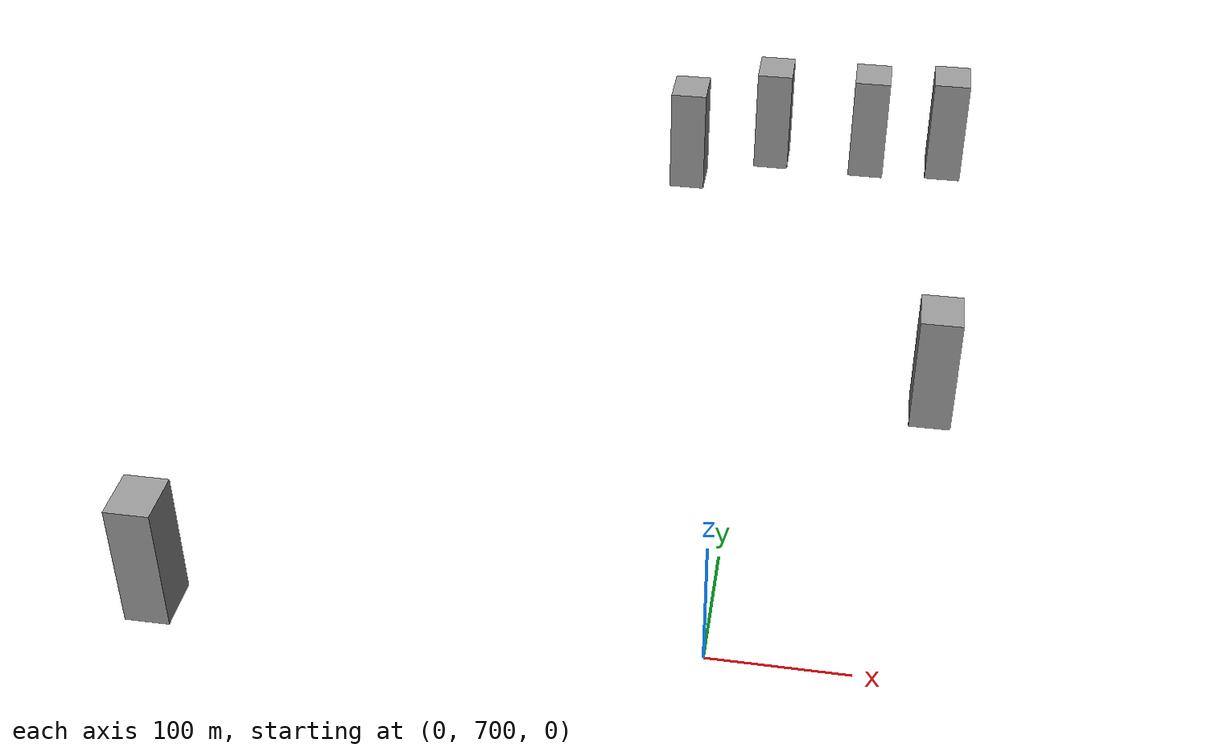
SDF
<sdf version="1.7">
 <world name="default">
  <model name="huge_building_59">
   <link name="link">
    <inertial>
     <mass>137299</mass>
     <inertia>
      <ixx>1.37911e+08</ixx>
      <ixy>0</ixy>
      <ixz>0</ixz>
      <iyy>1.32035e+08</iyy>
      <iyz>0</iyz>
      <izz>3.13216e+07</izz>
     </inertia>
    </inertial>
    <visual name="visual">
     <geometry><box><size>33.3468 40.3177 102.117</size></box></geometry>
     <material>
      <script><name>Gazebo/Grey</name><uri>file://media/materials/scripts/gazebo.material</uri></script>
      <shader type="pixel"/>
     </material>
    </visual>
    <collision name="collision">
     <geometry><box><size>33.3468 40.3177 102.117</size></box></geometry>
     <surface>
      <friction>
       <ode><mu>1</mu><mu2>1</mu2><fdir1>0 0 0</fdir1><slip1>0</slip1><slip2>0</slip2></ode>
       <torsional>
        <coefficient>1</coefficient>
        <patch_radius>0</patch_radius>
        <surface_radius>0</surface_radius>
        <use_patch_radius>1</use_patch_radius>
        <ode><slip>0</slip></ode>
       </torsional>
      </friction>
      <bounce><restitution_coefficient>0</restitution_coefficient><threshold>1e+06</threshold></bounce>
      <contact>
       <collide_without_contact>0</collide_without_contact>
       <collide_without_contact_bitmask>1</collide_without_contact_bitmask>
       <collide_bitmask>1</collide_bitmask>
       <ode>
        <soft_cfm>0</soft_cfm>
        <soft_erp>0.2</soft_erp>
        <kp>1e+13</kp>
        <kd>1</kd>
        <max_vel>0.01</max_vel>
        <min_depth>0</min_depth>
       </ode>
       <bullet>
        <split_impulse>1</split_impulse>
        <split_impulse_penetration_threshold>-0.01</split_impulse_penetration_threshold>
        <soft_cfm>0</soft_cfm>
        <soft_erp>0.2</soft_erp>
        <kp>1e+13</kp>
        <kd>1</kd>
       </bullet>
      </contact>
     </surface>
    </collision>
   </link>
   <static>0</static>
   <pose>-400.38 721.44 21 0 -0 0</pose>
  </model>
  <model name="huge_building_102">
   <link name="link">
    <inertial>
     <mass>137299</mass>
     <inertia>
      <ixx>1.37911e+08</ixx>
      <ixy>0</ixy>
      <ixz>0</ixz>
      <iyy>1.32035e+08</iyy>
      <iyz>0</iyz>
      <izz>3.13216e+07</izz>
     </inertia>
    </inertial>
    <visual name="visual">
     <geometry><box><size>33.3468 40.3177 102.117</size></box></geometry>
     <material>
      <script><name>Gazebo/Grey</name><uri>file://media/materials/scripts/gazebo.material</uri></script>
      <shader type="pixel"/>
     </material>
    </visual>
    <collision name="collision">
     <geometry><box><size>33.3468 40.3177 102.117</size></box></geometry>
     <surface>
      <friction>
       <ode><mu>1</mu><mu2>1</mu2><fdir1>0 0 0</fdir1><slip1>0</slip1><slip2>0</slip2></ode>
       <torsional>
        <coefficient>1</coefficient>
        <patch_radius>0</patch_radius>
        <surface_radius>0</surface_radius>
        <use_patch_radius>1</use_patch_radius>
        <ode><slip>0</slip></ode>
       </torsional>
      </friction>
      <bounce><restitution_coefficient>0</restitution_coefficient><threshold>1e+06</threshold></bounce>
      <contact>
       <collide_without_contact>0</collide_without_contact>
       <collide_without_contact_bitmask>1</collide_without_contact_bitmask>
       <collide_bitmask>1</collide_bitmask>
       <ode>
        <soft_cfm>0</soft_cfm>
        <soft_erp>0.2</soft_erp>
        <kp>1e+13</kp>
        <kd>1</kd>
        <max_vel>0.01</max_vel>
        <min_depth>0</min_depth>
       </ode>
       <bullet>
        <split_impulse>1</split_impulse>
        <split_impulse_penetration_threshold>-0.01</split_impulse_penetration_threshold>
        <soft_cfm>0</soft_cfm>
        <soft_erp>0.2</soft_erp>
        <kp>1e+13</kp>
        <kd>1</kd>
       </bullet>
      </contact>
     </surface>
    </collision>
   </link>
   <static>0</static>
   <pose>-92.7416 1385.46 15 0 -0 0</pose>
  </model>
  <model name="huge_building_103">
   <link name="link">
    <inertial>
     <mass>137299</mass>
     <inertia>
      <ixx>1.37911e+08</ixx>
      <ixy>0</ixy>
      <ixz>0</ixz>
      <iyy>1.32035e+08</iyy>
      <iyz>0</iyz>
      <izz>3.13216e+07</izz>
     </inertia>
    </inertial>
    <visual name="visual">
     <geometry><box><size>33.3468 40.3177 102.117</size></box></geometry>
     <material>
      <script><name>Gazebo/Grey</name><uri>file://media/materials/scripts/gazebo.material</uri></script>
      <shader type="pixel"/>
     </material>
    </visual>
    <collision name="collision">
     <geometry><box><size>33.3468 40.3177 102.117</size></box></geometry>
     <surface>
      <friction>
       <ode><mu>1</mu><mu2>1</mu2><fdir1>0 0 0</fdir1><slip1>0</slip1><slip2>0</slip2></ode>
       <torsional>
        <coefficient>1</coefficient>
        <patch_radius>0</patch_radius>
        <surface_radius>0</surface_radius>
        <use_patch_radius>1</use_patch_radius>
        <ode><slip>0</slip></ode>
       </torsional>
      </friction>
      <bounce><restitution_coefficient>0</restitution_coefficient><threshold>1e+06</threshold></bounce>
      <contact>
       <collide_without_contact>0</collide_without_contact>
       <collide_without_contact_bitmask>1</collide_without_contact_bitmask>
       <collide_bitmask>1</collide_bitmask>
       <ode>
        <soft_cfm>0</soft_cfm>
        <soft_erp>0.2</soft_erp>
        <kp>1e+13</kp>
        <kd>1</kd>
        <max_vel>0.01</max_vel>
        <min_depth>0</min_depth>
       </ode>
       <bullet>
        <split_impulse>1</split_impulse>
        <split_impulse_penetration_threshold>-0.01</split_impulse_penetration_threshold>
        <soft_cfm>0</soft_cfm>
        <soft_erp>0.2</soft_erp>
        <kp>1e+13</kp>
        <kd>1</kd>
       </bullet>
      </contact>
     </surface>
    </collision>
   </link>
   <static>0</static>
   <pose>-13.0269 1424.68 22 0 -0 0</pose>
  </model>
  <model name="huge_building_104">
   <link name="link">
    <inertial>
     <mass>137299</mass>
     <inertia>
      <ixx>1.37911e+08</ixx>
      <ixy>0</ixy>
      <ixz>0</ixz>
      <iyy>1.32035e+08</iyy>
      <iyz>0</iyz>
      <izz>3.13216e+07</izz>
     </inertia>
    </inertial>
    <visual name="visual">
     <geometry><box><size>33.3468 40.3177 102.117</size></box></geometry>
     <material>
      <script><name>Gazebo/Grey</name><uri>file://media/materials/scripts/gazebo.material</uri></script>
      <shader type="pixel"/>
     </material>
    </visual>
    <collision name="collision">
     <geometry><box><size>33.3468 40.3177 102.117</size></box></geometry>
     <surface>
      <friction>
       <ode><mu>1</mu><mu2>1</mu2><fdir1>0 0 0</fdir1><slip1>0</slip1><slip2>0</slip2></ode>
       <torsional>
        <coefficient>1</coefficient>
        <patch_radius>0</patch_radius>
        <surface_radius>0</surface_radius>
        <use_patch_radius>1</use_patch_radius>
        <ode><slip>0</slip></ode>
       </torsional>
      </friction>
      <bounce><restitution_coefficient>0</restitution_coefficient><threshold>1e+06</threshold></bounce>
      <contact>
       <collide_without_contact>0</collide_without_contact>
       <collide_without_contact_bitmask>1</collide_without_contact_bitmask>
       <collide_bitmask>1</collide_bitmask>
       <ode>
        <soft_cfm>0</soft_cfm>
        <soft_erp>0.2</soft_erp>
        <kp>1e+13</kp>
        <kd>1</kd>
        <max_vel>0.01</max_vel>
        <min_depth>0</min_depth>
       </ode>
       <bullet>
        <split_impulse>1</split_impulse>
        <split_impulse_penetration_threshold>-0.01</split_impulse_penetration_threshold>
        <soft_cfm>0</soft_cfm>
        <soft_erp>0.2</soft_erp>
        <kp>1e+13</kp>
        <kd>1</kd>
       </bullet>
      </contact>
     </surface>
    </collision>
   </link>
   <static>0</static>
   <pose>81.3568 1405.12 32 0 -0 0</pose>
  </model>
  <model name="huge_building_105">
   <link name="link">
    <inertial>
     <mass>137299</mass>
     <inertia>
      <ixx>1.37911e+08</ixx>
      <ixy>0</ixy>
      <ixz>0</ixz>
      <iyy>1.32035e+08</iyy>
      <iyz>0</iyz>
      <izz>3.13216e+07</izz>
     </inertia>
    </inertial>
    <visual name="visual">
     <geometry><box><size>33.3468 40.3177 102.117</size></box></geometry>
     <material>
      <script><name>Gazebo/Grey</name><uri>file://media/materials/scripts/gazebo.material</uri></script>
      <shader type="pixel"/>
     </material>
    </visual>
    <collision name="collision">
     <geometry><box><size>33.3468 40.3177 102.117</size></box></geometry>
     <surface>
      <friction>
       <ode><mu>1</mu><mu2>1</mu2><fdir1>0 0 0</fdir1><slip1>0</slip1><slip2>0</slip2></ode>
       <torsional>
        <coefficient>1</coefficient>
        <patch_radius>0</patch_radius>
        <surface_radius>0</surface_radius>
        <use_patch_radius>1</use_patch_radius>
        <ode><slip>0</slip></ode>
       </torsional>
      </friction>
      <bounce><restitution_coefficient>0</restitution_coefficient><threshold>1e+06</threshold></bounce>
      <contact>
       <collide_without_contact>0</collide_without_contact>
       <collide_without_contact_bitmask>1</collide_without_contact_bitmask>
       <collide_bitmask>1</collide_bitmask>
       <ode>
        <soft_cfm>0</soft_cfm>
        <soft_erp>0.2</soft_erp>
        <kp>1e+13</kp>
        <kd>1</kd>
        <max_vel>0.01</max_vel>
        <min_depth>0</min_depth>
       </ode>
       <bullet>
        <split_impulse>1</split_impulse>
        <split_impulse_penetration_threshold>-0.01</split_impulse_penetration_threshold>
        <soft_cfm>0</soft_cfm>
        <soft_erp>0.2</soft_erp>
        <kp>1e+13</kp>
        <kd>1</kd>
       </bullet>
      </contact>
     </surface>
    </collision>
   </link>
   <static>0</static>
   <pose>155.833 1400.75 38 0 -0 0</pose>
  </model>
  <model name="huge_building_161">
   <link name="link">
    <inertial>
     <mass>137299</mass>
     <inertia>
      <ixx>1.37911e+08</ixx>
      <ixy>0</ixy>
      <ixz>0</ixz>
      <iyy>1.32035e+08</iyy>
      <iyz>0</iyz>
      <izz>3.13216e+07</izz>
     </inertia>
    </inertial>
    <visual name="visual">
     <geometry><box><size>33.3468 40.3177 102.117</size></box></geometry>
     <material>
      <script><name>Gazebo/Grey</name><uri>file://media/materials/scripts/gazebo.material</uri></script>
      <shader type="pixel"/>
     </material>
    </visual>
    <collision name="collision">
     <geometry><box><size>33.3468 40.3177 102.117</size></box></geometry>
     <surface>
      <friction>
       <ode><mu>1</mu><mu2>1</mu2><fdir1>0 0 0</fdir1><slip1>0</slip1><slip2>0</slip2></ode>
       <torsional>
        <coefficient>1</coefficient>
        <patch_radius>0</patch_radius>
        <surface_radius>0</surface_radius>
        <use_patch_radius>1</use_patch_radius>
        <ode><slip>0</slip></ode>
       </torsional>
      </friction>
      <bounce><restitution_coefficient>0</restitution_coefficient><threshold>1e+06</threshold></bounce>
      <contact>
       <collide_without_contact>0</collide_without_contact>
       <collide_without_contact_bitmask>1</collide_without_contact_bitmask>
       <collide_bitmask>1</collide_bitmask>
       <ode>
        <soft_cfm>0</soft_cfm>
        <soft_erp>0.2</soft_erp>
        <kp>1e+13</kp>
        <kd>1</kd>
        <max_vel>0.01</max_vel>
        <min_depth>0</min_depth>
       </ode>
       <bullet>
        <split_impulse>1</split_impulse>
        <split_impulse_penetration_threshold>-0.01</split_impulse_penetration_threshold>
        <soft_cfm>0</soft_cfm>
        <soft_erp>0.2</soft_erp>
        <kp>1e+13</kp>
        <kd>1</kd>
       </bullet>
      </contact>
     </surface>
    </collision>
   </link>
   <static>0</static>
   <pose>149.375 1017.72 32 0 -0 0</pose>
  </model>
 </world>
</sdf>
